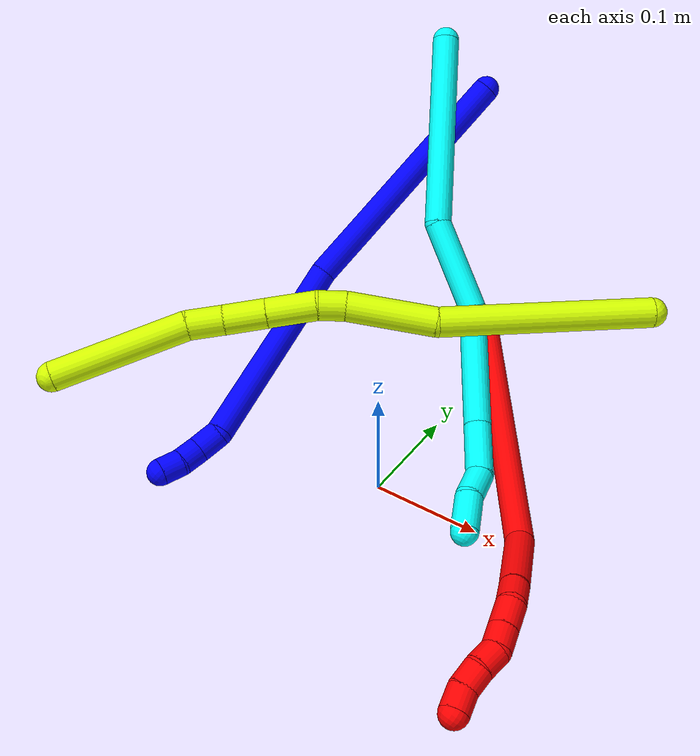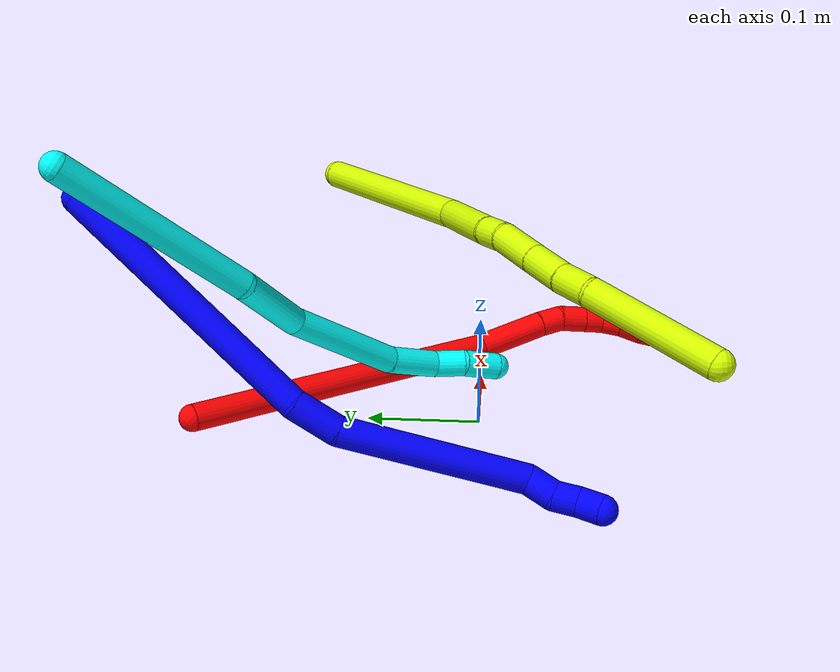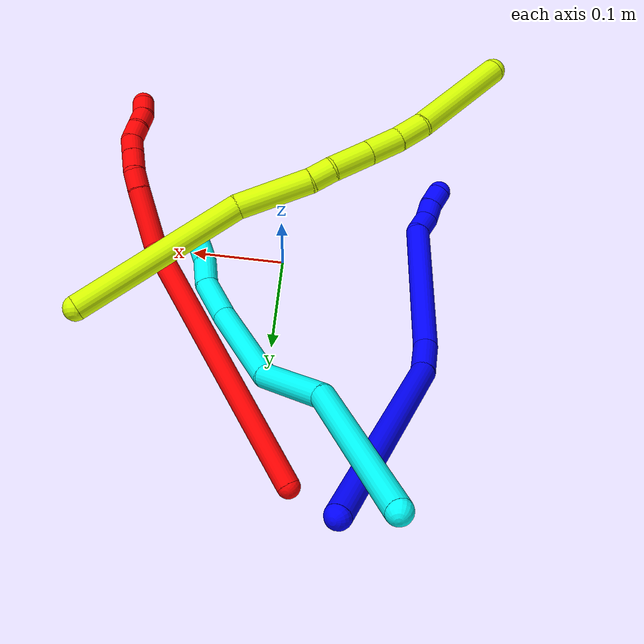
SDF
<sdf version="1.7">
 <world name="default">
  <model name="1">
   <static>0</static>
   <link name="1">
    <collision name="collision-cylinder-e_1_1_4">
     <pose>-0.005596 -0.027599 -0.115909 2.90784 -0.046932 -0.394594</pose>
     <geometry><cylinder><radius>0.0125</radius><length>0.238562</length></cylinder></geometry>
     <surface>
      <friction><ode><mu>1.16</mu><mu2>1.16</mu2><slip1>0</slip1><slip2>0</slip2></ode></friction>
      <contact><ode><kp>1e+06</kp><kd>1</kd><max_vel>0</max_vel><min_depth>0.001</min_depth></ode></contact>
     </surface>
    </collision>
    <visual name="visual-cylinder-e_1_1_4">
     <pose>-0.005596 -0.027599 -0.115909 2.90784 -0.046932 -0.394594</pose>
     <geometry><cylinder><radius>0.0125</radius><length>0.238562</length></cylinder></geometry>
     <material><ambient>0 0 1 1</ambient></material>
    </visual>
    <collision name="collision-cylinder-e_2_4_5">
     <pose>-0.009926 -0.064398 -0.249499 2.66175 0.063418 0.257884</pose>
     <geometry><cylinder><radius>0.0125</radius><length>0.039944</length></cylinder></geometry>
     <surface>
      <friction><ode><mu>1.16</mu><mu2>1.16</mu2><slip1>0</slip1><slip2>0</slip2></ode></friction>
      <contact><ode><kp>1e+06</kp><kd>1</kd><max_vel>0</max_vel><min_depth>0.001</min_depth></ode></contact>
     </surface>
    </collision>
    <visual name="visual-cylinder-e_2_4_5">
     <pose>-0.009926 -0.064398 -0.249499 2.66175 0.063418 0.257884</pose>
     <geometry><cylinder><radius>0.0125</radius><length>0.039944</length></cylinder></geometry>
     <material><ambient>0 0 1 1</ambient></material>
    </visual>
    <collision name="collision-cylinder-e_3_5_6">
     <pose>-0.009202 -0.128324 -0.323468 2.37028 -0.006903 -0.017002</pose>
     <geometry><cylinder><radius>0.0125</radius><length>0.157015</length></cylinder></geometry>
     <surface>
      <friction><ode><mu>1.16</mu><mu2>1.16</mu2><slip1>0</slip1><slip2>0</slip2></ode></friction>
      <contact><ode><kp>1e+06</kp><kd>1</kd><max_vel>0</max_vel><min_depth>0.001</min_depth></ode></contact>
     </surface>
    </collision>
    <visual name="visual-cylinder-e_3_5_6">
     <pose>-0.009202 -0.128324 -0.323468 2.37028 -0.006903 -0.017002</pose>
     <geometry><cylinder><radius>0.0125</radius><length>0.157015</length></cylinder></geometry>
     <material><ambient>0 0 1 1</ambient></material>
    </visual>
    <collision name="collision-cylinder-e_4_6_7">
     <pose>-0.012711 -0.187087 -0.390715 2.78848 -0.248746 -1.22241</pose>
     <geometry><cylinder><radius>0.0125</radius><length>0.024099</length></cylinder></geometry>
     <surface>
      <friction><ode><mu>1.16</mu><mu2>1.16</mu2><slip1>0</slip1><slip2>0</slip2></ode></friction>
      <contact><ode><kp>1e+06</kp><kd>1</kd><max_vel>0</max_vel><min_depth>0.001</min_depth></ode></contact>
     </surface>
    </collision>
    <visual name="visual-cylinder-e_4_6_7">
     <pose>-0.012711 -0.187087 -0.390715 2.78848 -0.248746 -1.22241</pose>
     <geometry><cylinder><radius>0.0125</radius><length>0.024099</length></cylinder></geometry>
     <material><ambient>0 0 1 1</ambient></material>
    </visual>
    <collision name="collision-cylinder-e_5_7_8">
     <pose>-0.019027 -0.197235 -0.409031 2.44873 -0.336929 -0.880586</pose>
     <geometry><cylinder><radius>0.0125</radius><length>0.020268</length></cylinder></geometry>
     <surface>
      <friction><ode><mu>1.16</mu><mu2>1.16</mu2><slip1>0</slip1><slip2>0</slip2></ode></friction>
      <contact><ode><kp>1e+06</kp><kd>1</kd><max_vel>0</max_vel><min_depth>0.001</min_depth></ode></contact>
     </surface>
    </collision>
    <visual name="visual-cylinder-e_5_7_8">
     <pose>-0.019027 -0.197235 -0.409031 2.44873 -0.336929 -0.880586</pose>
     <geometry><cylinder><radius>0.0125</radius><length>0.020268</length></cylinder></geometry>
     <material><ambient>0 0 1 1</ambient></material>
    </visual>
    <collision name="collision-cylinder-e_6_8_2">
     <pose>-0.02729 -0.207819 -0.423939 2.60648 -0.510324 -1.52115</pose>
     <geometry><cylinder><radius>0.0125</radius><length>0.020113</length></cylinder></geometry>
     <surface>
      <friction><ode><mu>1.16</mu><mu2>1.16</mu2><slip1>0</slip1><slip2>0</slip2></ode></friction>
      <contact><ode><kp>1e+06</kp><kd>1</kd><max_vel>0</max_vel><min_depth>0.001</min_depth></ode></contact>
     </surface>
    </collision>
    <visual name="visual-cylinder-e_6_8_2">
     <pose>-0.02729 -0.207819 -0.423939 2.60648 -0.510324 -1.52115</pose>
     <geometry><cylinder><radius>0.0125</radius><length>0.020113</length></cylinder></geometry>
     <material><ambient>0 0 1 1</ambient></material>
    </visual>
    <collision name="collision-sphere-2">
     <pose>-0.032202 -0.212293 -0.431487 0 -0 0</pose>
     <geometry><sphere><radius>0.0125</radius></sphere></geometry>
     <surface>
      <friction><ode><mu>1.16</mu><mu2>1.16</mu2><slip1>0</slip1><slip2>0</slip2></ode></friction>
      <contact><ode><kp>1e+06</kp><kd>1</kd><max_vel>0</max_vel><min_depth>0.001</min_depth></ode></contact>
     </surface>
    </collision>
    <visual name="visual-sphere-2">
     <pose>-0.032202 -0.212293 -0.431487 0 -0 0</pose>
     <geometry><sphere><radius>0.0125</radius></sphere></geometry>
     <material><ambient>0 0 1 1</ambient></material>
    </visual>
    <collision name="collision-sphere-4">
     <pose>-0.011192 -0.055197 -0.231819 0 -0 0</pose>
     <geometry><sphere><radius>0.0125</radius></sphere></geometry>
     <surface>
      <friction><ode><mu>1.16</mu><mu2>1.16</mu2><slip1>0</slip1><slip2>0</slip2></ode></friction>
      <contact><ode><kp>1e+06</kp><kd>1</kd><max_vel>0</max_vel><min_depth>0.001</min_depth></ode></contact>
     </surface>
    </collision>
    <visual name="visual-sphere-4">
     <pose>-0.011192 -0.055197 -0.231819 0 -0 0</pose>
     <geometry><sphere><radius>0.0125</radius></sphere></geometry>
     <material><ambient>0 0 1 1</ambient></material>
    </visual>
    <collision name="collision-sphere-1">
     <geometry><sphere><radius>0.0125</radius></sphere></geometry>
     <surface>
      <friction><ode><mu>1.16</mu><mu2>1.16</mu2><slip1>0</slip1><slip2>0</slip2></ode></friction>
      <contact><ode><kp>1e+06</kp><kd>1</kd><max_vel>0</max_vel><min_depth>0.001</min_depth></ode></contact>
     </surface>
    </collision>
    <visual name="visual-sphere-1">
     <geometry><sphere><radius>0.0125</radius></sphere></geometry>
     <material><ambient>0 0 1 1</ambient></material>
    </visual>
    <collision name="collision-sphere-8">
     <pose>-0.022378 -0.203344 -0.41639 0 -0 0</pose>
     <geometry><sphere><radius>0.0125</radius></sphere></geometry>
     <surface>
      <friction><ode><mu>1.16</mu><mu2>1.16</mu2><slip1>0</slip1><slip2>0</slip2></ode></friction>
      <contact><ode><kp>1e+06</kp><kd>1</kd><max_vel>0</max_vel><min_depth>0.001</min_depth></ode></contact>
     </surface>
    </collision>
    <visual name="visual-sphere-8">
     <pose>-0.022378 -0.203344 -0.41639 0 -0 0</pose>
     <geometry><sphere><radius>0.0125</radius></sphere></geometry>
     <material><ambient>0 0 1 1</ambient></material>
    </visual>
    <collision name="collision-sphere-5">
     <pose>-0.008661 -0.0736 -0.26718 0 -0 0</pose>
     <geometry><sphere><radius>0.0125</radius></sphere></geometry>
     <surface>
      <friction><ode><mu>1.16</mu><mu2>1.16</mu2><slip1>0</slip1><slip2>0</slip2></ode></friction>
      <contact><ode><kp>1e+06</kp><kd>1</kd><max_vel>0</max_vel><min_depth>0.001</min_depth></ode></contact>
     </surface>
    </collision>
    <visual name="visual-sphere-5">
     <pose>-0.008661 -0.0736 -0.26718 0 -0 0</pose>
     <geometry><sphere><radius>0.0125</radius></sphere></geometry>
     <material><ambient>0 0 1 1</ambient></material>
    </visual>
    <collision name="collision-sphere-6">
     <pose>-0.009744 -0.183048 -0.379757 0 -0 0</pose>
     <geometry><sphere><radius>0.0125</radius></sphere></geometry>
     <surface>
      <friction><ode><mu>1.16</mu><mu2>1.16</mu2><slip1>0</slip1><slip2>0</slip2></ode></friction>
      <contact><ode><kp>1e+06</kp><kd>1</kd><max_vel>0</max_vel><min_depth>0.001</min_depth></ode></contact>
     </surface>
    </collision>
    <visual name="visual-sphere-6">
     <pose>-0.009744 -0.183048 -0.379757 0 -0 0</pose>
     <geometry><sphere><radius>0.0125</radius></sphere></geometry>
     <material><ambient>0 0 1 1</ambient></material>
    </visual>
    <collision name="collision-sphere-7">
     <pose>-0.015677 -0.191126 -0.401672 0 -0 0</pose>
     <geometry><sphere><radius>0.0125</radius></sphere></geometry>
     <surface>
      <friction><ode><mu>1.16</mu><mu2>1.16</mu2><slip1>0</slip1><slip2>0</slip2></ode></friction>
      <contact><ode><kp>1e+06</kp><kd>1</kd><max_vel>0</max_vel><min_depth>0.001</min_depth></ode></contact>
     </surface>
    </collision>
    <visual name="visual-sphere-7">
     <pose>-0.015677 -0.191126 -0.401672 0 -0 0</pose>
     <geometry><sphere><radius>0.0125</radius></sphere></geometry>
     <material><ambient>0 0 1 1</ambient></material>
    </visual>
    <inertial>
     <pose>-0.008834 -0.083982 -0.229279 0 -0 0</pose>
     <mass>0.5</mass>
     <inertia>
      <ixx>0.00094</ixx>
      <ixy>0</ixy>
      <ixz>0</ixz>
      <iyy>-0.001725</iyy>
      <iyz>0</iyz>
      <izz>0.000522</izz>
     </inertia>
    </inertial>
   </link>
   <pose>-0.086959 0.32077 0.230772 -0.417349 0.681276 0.352336</pose>
  </model>
  <model name="2">
   <static>0</static>
   <link name="2">
    <collision name="collision-cylinder-e_1_1_4">
     <pose>0.049771 -0.120198 -0.082406 2.17178 0.329097 0.610627</pose>
     <geometry><cylinder><radius>0.0125</radius><length>0.307997</length></cylinder></geometry>
     <surface>
      <friction><ode><mu>1.16</mu><mu2>1.16</mu2><slip1>0</slip1><slip2>0</slip2></ode></friction>
      <contact><ode><kp>1e+06</kp><kd>1</kd><max_vel>0</max_vel><min_depth>0.001</min_depth></ode></contact>
     </surface>
    </collision>
    <visual name="visual-cylinder-e_1_1_4">
     <pose>0.049771 -0.120198 -0.082406 2.17178 0.329097 0.610627</pose>
     <geometry><cylinder><radius>0.0125</radius><length>0.307997</length></cylinder></geometry>
     <material><ambient>1 0 0 1</ambient></material>
    </visual>
    <collision name="collision-cylinder-e_2_4_5">
     <pose>0.100787 -0.269382 -0.180263 2.06053 0.03791 0.063153</pose>
     <geometry><cylinder><radius>0.0125</radius><length>0.065739</length></cylinder></geometry>
     <surface>
      <friction><ode><mu>1.16</mu><mu2>1.16</mu2><slip1>0</slip1><slip2>0</slip2></ode></friction>
      <contact><ode><kp>1e+06</kp><kd>1</kd><max_vel>0</max_vel><min_depth>0.001</min_depth></ode></contact>
     </surface>
    </collision>
    <visual name="visual-cylinder-e_2_4_5">
     <pose>0.100787 -0.269382 -0.180263 2.06053 0.03791 0.063153</pose>
     <geometry><cylinder><radius>0.0125</radius><length>0.065739</length></cylinder></geometry>
     <material><ambient>1 0 0 1</ambient></material>
    </visual>
    <collision name="collision-cylinder-e_3_5_6">
     <pose>0.10247 -0.307739 -0.201701 2.13935 0.039279 0.071686</pose>
     <geometry><cylinder><radius>0.0125</radius><length>0.02226</length></cylinder></geometry>
     <surface>
      <friction><ode><mu>1.16</mu><mu2>1.16</mu2><slip1>0</slip1><slip2>0</slip2></ode></friction>
      <contact><ode><kp>1e+06</kp><kd>1</kd><max_vel>0</max_vel><min_depth>0.001</min_depth></ode></contact>
     </surface>
    </collision>
    <visual name="visual-cylinder-e_3_5_6">
     <pose>0.10247 -0.307739 -0.201701 2.13935 0.039279 0.071686</pose>
     <geometry><cylinder><radius>0.0125</radius><length>0.02226</length></cylinder></geometry>
     <material><ambient>1 0 0 1</ambient></material>
    </visual>
    <collision name="collision-cylinder-e_4_6_7">
     <pose>0.103639 -0.324666 -0.216952 2.45736 0.061177 0.171421</pose>
     <geometry><cylinder><radius>0.0125</radius><length>0.023952</length></cylinder></geometry>
     <surface>
      <friction><ode><mu>1.16</mu><mu2>1.16</mu2><slip1>0</slip1><slip2>0</slip2></ode></friction>
      <contact><ode><kp>1e+06</kp><kd>1</kd><max_vel>0</max_vel><min_depth>0.001</min_depth></ode></contact>
     </surface>
    </collision>
    <visual name="visual-cylinder-e_4_6_7">
     <pose>0.103639 -0.324666 -0.216952 2.45736 0.061177 0.171421</pose>
     <geometry><cylinder><radius>0.0125</radius><length>0.023952</length></cylinder></geometry>
     <material><ambient>1 0 0 1</ambient></material>
    </visual>
    <collision name="collision-cylinder-e_5_7_8">
     <pose>0.105009 -0.338509 -0.233966 2.46016 0.063813 0.179564</pose>
     <geometry><cylinder><radius>0.0125</radius><length>0.020001</length></cylinder></geometry>
     <surface>
      <friction><ode><mu>1.16</mu><mu2>1.16</mu2><slip1>0</slip1><slip2>0</slip2></ode></friction>
      <contact><ode><kp>1e+06</kp><kd>1</kd><max_vel>0</max_vel><min_depth>0.001</min_depth></ode></contact>
     </surface>
    </collision>
    <visual name="visual-cylinder-e_5_7_8">
     <pose>0.105009 -0.338509 -0.233966 2.46016 0.063813 0.179564</pose>
     <geometry><cylinder><radius>0.0125</radius><length>0.020001</length></cylinder></geometry>
     <material><ambient>1 0 0 1</ambient></material>
    </visual>
    <collision name="collision-cylinder-e_6_8_9">
     <pose>0.102604 -0.349234 -0.250149 2.65698 -0.309044 -1.12468</pose>
     <geometry><cylinder><radius>0.0125</radius><length>0.020004</length></cylinder></geometry>
     <surface>
      <friction><ode><mu>1.16</mu><mu2>1.16</mu2><slip1>0</slip1><slip2>0</slip2></ode></friction>
      <contact><ode><kp>1e+06</kp><kd>1</kd><max_vel>0</max_vel><min_depth>0.001</min_depth></ode></contact>
     </surface>
    </collision>
    <visual name="visual-cylinder-e_6_8_9">
     <pose>0.102604 -0.349234 -0.250149 2.65698 -0.309044 -1.12468</pose>
     <geometry><cylinder><radius>0.0125</radius><length>0.020004</length></cylinder></geometry>
     <material><ambient>1 0 0 1</ambient></material>
    </visual>
    <collision name="collision-cylinder-e_7_9_10">
     <pose>0.097997 -0.357035 -0.26789 2.79504 -0.156853 -0.844038</pose>
     <geometry><cylinder><radius>0.0125</radius><length>0.020042</length></cylinder></geometry>
     <surface>
      <friction><ode><mu>1.16</mu><mu2>1.16</mu2><slip1>0</slip1><slip2>0</slip2></ode></friction>
      <contact><ode><kp>1e+06</kp><kd>1</kd><max_vel>0</max_vel><min_depth>0.001</min_depth></ode></contact>
     </surface>
    </collision>
    <visual name="visual-cylinder-e_7_9_10">
     <pose>0.097997 -0.357035 -0.26789 2.79504 -0.156853 -0.844038</pose>
     <geometry><cylinder><radius>0.0125</radius><length>0.020042</length></cylinder></geometry>
     <material><ambient>1 0 0 1</ambient></material>
    </visual>
    <collision name="collision-cylinder-e_8_10_2">
     <pose>0.097232 -0.365342 -0.285856 2.62257 0.08009 0.299561</pose>
     <geometry><cylinder><radius>0.0125</radius><length>0.020004</length></cylinder></geometry>
     <surface>
      <friction><ode><mu>1.16</mu><mu2>1.16</mu2><slip1>0</slip1><slip2>0</slip2></ode></friction>
      <contact><ode><kp>1e+06</kp><kd>1</kd><max_vel>0</max_vel><min_depth>0.001</min_depth></ode></contact>
     </surface>
    </collision>
    <visual name="visual-cylinder-e_8_10_2">
     <pose>0.097232 -0.365342 -0.285856 2.62257 0.08009 0.299561</pose>
     <geometry><cylinder><radius>0.0125</radius><length>0.020004</length></cylinder></geometry>
     <material><ambient>1 0 0 1</ambient></material>
    </visual>
    <collision name="collision-sphere-2">
     <pose>0.098032 -0.370288 -0.294513 0 -0 0</pose>
     <geometry><sphere><radius>0.0125</radius></sphere></geometry>
     <surface>
      <friction><ode><mu>1.16</mu><mu2>1.16</mu2><slip1>0</slip1><slip2>0</slip2></ode></friction>
      <contact><ode><kp>1e+06</kp><kd>1</kd><max_vel>0</max_vel><min_depth>0.001</min_depth></ode></contact>
     </surface>
    </collision>
    <visual name="visual-sphere-2">
     <pose>0.098032 -0.370288 -0.294513 0 -0 0</pose>
     <geometry><sphere><radius>0.0125</radius></sphere></geometry>
     <material><ambient>1 0 0 1</ambient></material>
    </visual>
    <collision name="collision-sphere-10">
     <pose>0.096431 -0.360397 -0.2772 0 -0 0</pose>
     <geometry><sphere><radius>0.0125</radius></sphere></geometry>
     <surface>
      <friction><ode><mu>1.16</mu><mu2>1.16</mu2><slip1>0</slip1><slip2>0</slip2></ode></friction>
      <contact><ode><kp>1e+06</kp><kd>1</kd><max_vel>0</max_vel><min_depth>0.001</min_depth></ode></contact>
     </surface>
    </collision>
    <visual name="visual-sphere-10">
     <pose>0.096431 -0.360397 -0.2772 0 -0 0</pose>
     <geometry><sphere><radius>0.0125</radius></sphere></geometry>
     <material><ambient>1 0 0 1</ambient></material>
    </visual>
    <collision name="collision-sphere-9">
     <pose>0.099562 -0.353673 -0.25858 0 -0 0</pose>
     <geometry><sphere><radius>0.0125</radius></sphere></geometry>
     <surface>
      <friction><ode><mu>1.16</mu><mu2>1.16</mu2><slip1>0</slip1><slip2>0</slip2></ode></friction>
      <contact><ode><kp>1e+06</kp><kd>1</kd><max_vel>0</max_vel><min_depth>0.001</min_depth></ode></contact>
     </surface>
    </collision>
    <visual name="visual-sphere-9">
     <pose>0.099562 -0.353673 -0.25858 0 -0 0</pose>
     <geometry><sphere><radius>0.0125</radius></sphere></geometry>
     <material><ambient>1 0 0 1</ambient></material>
    </visual>
    <collision name="collision-sphere-4">
     <pose>0.099541 -0.240397 -0.164812 0 -0 0</pose>
     <geometry><sphere><radius>0.0125</radius></sphere></geometry>
     <surface>
      <friction><ode><mu>1.16</mu><mu2>1.16</mu2><slip1>0</slip1><slip2>0</slip2></ode></friction>
      <contact><ode><kp>1e+06</kp><kd>1</kd><max_vel>0</max_vel><min_depth>0.001</min_depth></ode></contact>
     </surface>
    </collision>
    <visual name="visual-sphere-4">
     <pose>0.099541 -0.240397 -0.164812 0 -0 0</pose>
     <geometry><sphere><radius>0.0125</radius></sphere></geometry>
     <material><ambient>1 0 0 1</ambient></material>
    </visual>
    <collision name="collision-sphere-1">
     <geometry><sphere><radius>0.0125</radius></sphere></geometry>
     <surface>
      <friction><ode><mu>1.16</mu><mu2>1.16</mu2><slip1>0</slip1><slip2>0</slip2></ode></friction>
      <contact><ode><kp>1e+06</kp><kd>1</kd><max_vel>0</max_vel><min_depth>0.001</min_depth></ode></contact>
     </surface>
    </collision>
    <visual name="visual-sphere-1">
     <geometry><sphere><radius>0.0125</radius></sphere></geometry>
     <material><ambient>1 0 0 1</ambient></material>
    </visual>
    <collision name="collision-sphere-8">
     <pose>0.105647 -0.344795 -0.241718 0 -0 0</pose>
     <geometry><sphere><radius>0.0125</radius></sphere></geometry>
     <surface>
      <friction><ode><mu>1.16</mu><mu2>1.16</mu2><slip1>0</slip1><slip2>0</slip2></ode></friction>
      <contact><ode><kp>1e+06</kp><kd>1</kd><max_vel>0</max_vel><min_depth>0.001</min_depth></ode></contact>
     </surface>
    </collision>
    <visual name="visual-sphere-8">
     <pose>0.105647 -0.344795 -0.241718 0 -0 0</pose>
     <geometry><sphere><radius>0.0125</radius></sphere></geometry>
     <material><ambient>1 0 0 1</ambient></material>
    </visual>
    <collision name="collision-sphere-5">
     <pose>0.102033 -0.298367 -0.195713 0 -0 0</pose>
     <geometry><sphere><radius>0.0125</radius></sphere></geometry>
     <surface>
      <friction><ode><mu>1.16</mu><mu2>1.16</mu2><slip1>0</slip1><slip2>0</slip2></ode></friction>
      <contact><ode><kp>1e+06</kp><kd>1</kd><max_vel>0</max_vel><min_depth>0.001</min_depth></ode></contact>
     </surface>
    </collision>
    <visual name="visual-sphere-5">
     <pose>0.102033 -0.298367 -0.195713 0 -0 0</pose>
     <geometry><sphere><radius>0.0125</radius></sphere></geometry>
     <material><ambient>1 0 0 1</ambient></material>
    </visual>
    <collision name="collision-sphere-6">
     <pose>0.102907 -0.317111 -0.207689 0 -0 0</pose>
     <geometry><sphere><radius>0.0125</radius></sphere></geometry>
     <surface>
      <friction><ode><mu>1.16</mu><mu2>1.16</mu2><slip1>0</slip1><slip2>0</slip2></ode></friction>
      <contact><ode><kp>1e+06</kp><kd>1</kd><max_vel>0</max_vel><min_depth>0.001</min_depth></ode></contact>
     </surface>
    </collision>
    <visual name="visual-sphere-6">
     <pose>0.102907 -0.317111 -0.207689 0 -0 0</pose>
     <geometry><sphere><radius>0.0125</radius></sphere></geometry>
     <material><ambient>1 0 0 1</ambient></material>
    </visual>
    <collision name="collision-sphere-7">
     <pose>0.104371 -0.332222 -0.226215 0 -0 0</pose>
     <geometry><sphere><radius>0.0125</radius></sphere></geometry>
     <surface>
      <friction><ode><mu>1.16</mu><mu2>1.16</mu2><slip1>0</slip1><slip2>0</slip2></ode></friction>
      <contact><ode><kp>1e+06</kp><kd>1</kd><max_vel>0</max_vel><min_depth>0.001</min_depth></ode></contact>
     </surface>
    </collision>
    <visual name="visual-sphere-7">
     <pose>0.104371 -0.332222 -0.226215 0 -0 0</pose>
     <geometry><sphere><radius>0.0125</radius></sphere></geometry>
     <material><ambient>1 0 0 1</ambient></material>
    </visual>
    <inertial>
     <pose>0.06956 -0.195154 -0.135377 0 -0 0</pose>
     <mass>0.5</mass>
     <inertia>
      <ixx>0.003267</ixx>
      <ixy>0</ixy>
      <ixz>0</ixz>
      <iyy>0.000521</iyy>
      <iyz>0</iyz>
      <izz>0.001124</izz>
     </inertia>
    </inertial>
   </link>
   <pose>-0.036448 0.25226 0.013014 -0.780236 0.49466 0.244346</pose>
  </model>
  <model name="3">
   <static>0</static>
   <link name="3">
    <collision name="collision-cylinder-e_1_1_4">
     <pose>0.033941 -0.014342 -0.085465 2.97533 0.373292 2.31055</pose>
     <geometry><cylinder><radius>0.0125</radius><length>0.18614</length></cylinder></geometry>
     <surface>
      <friction><ode><mu>1.16</mu><mu2>1.16</mu2><slip1>0</slip1><slip2>0</slip2></ode></friction>
      <contact><ode><kp>1e+06</kp><kd>1</kd><max_vel>0</max_vel><min_depth>0.001</min_depth></ode></contact>
     </surface>
    </collision>
    <visual name="visual-cylinder-e_1_1_4">
     <pose>0.033941 -0.014342 -0.085465 2.97533 0.373292 2.31055</pose>
     <geometry><cylinder><radius>0.0125</radius><length>0.18614</length></cylinder></geometry>
     <material><ambient>0.003922 1 0.996078 1</ambient></material>
    </visual>
    <collision name="collision-cylinder-e_2_4_5">
     <pose>0.097947 -0.040353 -0.200239 2.76267 0.761369 2.24792</pose>
     <geometry><cylinder><radius>0.0125</radius><length>0.087157</length></cylinder></geometry>
     <surface>
      <friction><ode><mu>1.16</mu><mu2>1.16</mu2><slip1>0</slip1><slip2>0</slip2></ode></friction>
      <contact><ode><kp>1e+06</kp><kd>1</kd><max_vel>0</max_vel><min_depth>0.001</min_depth></ode></contact>
     </surface>
    </collision>
    <visual name="visual-cylinder-e_2_4_5">
     <pose>0.097947 -0.040353 -0.200239 2.76267 0.761369 2.24792</pose>
     <geometry><cylinder><radius>0.0125</radius><length>0.087157</length></cylinder></geometry>
     <material><ambient>0.003922 1 0.996078 1</ambient></material>
    </visual>
    <collision name="collision-cylinder-e_3_5_6">
     <pose>0.147623 -0.069289 -0.279862 2.81101 0.353191 1.63821</pose>
     <geometry><cylinder><radius>0.0125</radius><length>0.113388</length></cylinder></geometry>
     <surface>
      <friction><ode><mu>1.16</mu><mu2>1.16</mu2><slip1>0</slip1><slip2>0</slip2></ode></friction>
      <contact><ode><kp>1e+06</kp><kd>1</kd><max_vel>0</max_vel><min_depth>0.001</min_depth></ode></contact>
     </surface>
    </collision>
    <visual name="visual-cylinder-e_3_5_6">
     <pose>0.147623 -0.069289 -0.279862 2.81101 0.353191 1.63821</pose>
     <geometry><cylinder><radius>0.0125</radius><length>0.113388</length></cylinder></geometry>
     <material><ambient>0.003922 1 0.996078 1</ambient></material>
    </visual>
    <collision name="collision-cylinder-e_4_6_7">
     <pose>0.17195 -0.099192 -0.351433 2.60526 0.188507 0.662686</pose>
     <geometry><cylinder><radius>0.0125</radius><length>0.050349</length></cylinder></geometry>
     <surface>
      <friction><ode><mu>1.16</mu><mu2>1.16</mu2><slip1>0</slip1><slip2>0</slip2></ode></friction>
      <contact><ode><kp>1e+06</kp><kd>1</kd><max_vel>0</max_vel><min_depth>0.001</min_depth></ode></contact>
     </surface>
    </collision>
    <visual name="visual-cylinder-e_4_6_7">
     <pose>0.17195 -0.099192 -0.351433 2.60526 0.188507 0.662686</pose>
     <geometry><cylinder><radius>0.0125</radius><length>0.050349</length></cylinder></geometry>
     <material><ambient>0.003922 1 0.996078 1</ambient></material>
    </visual>
    <collision name="collision-cylinder-e_5_7_8">
     <pose>0.172896 -0.118671 -0.384638 2.62149 -0.267366 -0.935974</pose>
     <geometry><cylinder><radius>0.0125</radius><length>0.028554</length></cylinder></geometry>
     <surface>
      <friction><ode><mu>1.16</mu><mu2>1.16</mu2><slip1>0</slip1><slip2>0</slip2></ode></friction>
      <contact><ode><kp>1e+06</kp><kd>1</kd><max_vel>0</max_vel><min_depth>0.001</min_depth></ode></contact>
     </surface>
    </collision>
    <visual name="visual-cylinder-e_5_7_8">
     <pose>0.172896 -0.118671 -0.384638 2.62149 -0.267366 -0.935974</pose>
     <geometry><cylinder><radius>0.0125</radius><length>0.028554</length></cylinder></geometry>
     <material><ambient>0.003922 1 0.996078 1</ambient></material>
    </visual>
    <collision name="collision-cylinder-e_6_8_2">
     <pose>0.16994 -0.133498 -0.411806 2.65847 0.047406 0.191862</pose>
     <geometry><cylinder><radius>0.0125</radius><length>0.034412</length></cylinder></geometry>
     <surface>
      <friction><ode><mu>1.16</mu><mu2>1.16</mu2><slip1>0</slip1><slip2>0</slip2></ode></friction>
      <contact><ode><kp>1e+06</kp><kd>1</kd><max_vel>0</max_vel><min_depth>0.001</min_depth></ode></contact>
     </surface>
    </collision>
    <visual name="visual-cylinder-e_6_8_2">
     <pose>0.16994 -0.133498 -0.411806 2.65847 0.047406 0.191862</pose>
     <geometry><cylinder><radius>0.0125</radius><length>0.034412</length></cylinder></geometry>
     <material><ambient>0.003922 1 0.996078 1</ambient></material>
    </visual>
    <collision name="collision-sphere-2">
     <pose>0.170755 -0.141482 -0.427026 0 -0 0</pose>
     <geometry><sphere><radius>0.0125</radius></sphere></geometry>
     <surface>
      <friction><ode><mu>1.16</mu><mu2>1.16</mu2><slip1>0</slip1><slip2>0</slip2></ode></friction>
      <contact><ode><kp>1e+06</kp><kd>1</kd><max_vel>0</max_vel><min_depth>0.001</min_depth></ode></contact>
     </surface>
    </collision>
    <visual name="visual-sphere-2">
     <pose>0.170755 -0.141482 -0.427026 0 -0 0</pose>
     <geometry><sphere><radius>0.0125</radius></sphere></geometry>
     <material><ambient>0.003922 1 0.996078 1</ambient></material>
    </visual>
    <collision name="collision-sphere-4">
     <pose>0.067882 -0.028683 -0.170931 0 -0 0</pose>
     <geometry><sphere><radius>0.0125</radius></sphere></geometry>
     <surface>
      <friction><ode><mu>1.16</mu><mu2>1.16</mu2><slip1>0</slip1><slip2>0</slip2></ode></friction>
      <contact><ode><kp>1e+06</kp><kd>1</kd><max_vel>0</max_vel><min_depth>0.001</min_depth></ode></contact>
     </surface>
    </collision>
    <visual name="visual-sphere-4">
     <pose>0.067882 -0.028683 -0.170931 0 -0 0</pose>
     <geometry><sphere><radius>0.0125</radius></sphere></geometry>
     <material><ambient>0.003922 1 0.996078 1</ambient></material>
    </visual>
    <collision name="collision-sphere-1">
     <geometry><sphere><radius>0.0125</radius></sphere></geometry>
     <surface>
      <friction><ode><mu>1.16</mu><mu2>1.16</mu2><slip1>0</slip1><slip2>0</slip2></ode></friction>
      <contact><ode><kp>1e+06</kp><kd>1</kd><max_vel>0</max_vel><min_depth>0.001</min_depth></ode></contact>
     </surface>
    </collision>
    <visual name="visual-sphere-1">
     <geometry><sphere><radius>0.0125</radius></sphere></geometry>
     <material><ambient>0.003922 1 0.996078 1</ambient></material>
    </visual>
    <collision name="collision-sphere-8">
     <pose>0.169124 -0.125514 -0.396587 0 -0 0</pose>
     <geometry><sphere><radius>0.0125</radius></sphere></geometry>
     <surface>
      <friction><ode><mu>1.16</mu><mu2>1.16</mu2><slip1>0</slip1><slip2>0</slip2></ode></friction>
      <contact><ode><kp>1e+06</kp><kd>1</kd><max_vel>0</max_vel><min_depth>0.001</min_depth></ode></contact>
     </surface>
    </collision>
    <visual name="visual-sphere-8">
     <pose>0.169124 -0.125514 -0.396587 0 -0 0</pose>
     <geometry><sphere><radius>0.0125</radius></sphere></geometry>
     <material><ambient>0.003922 1 0.996078 1</ambient></material>
    </visual>
    <collision name="collision-sphere-5">
     <pose>0.128012 -0.052022 -0.229547 0 -0 0</pose>
     <geometry><sphere><radius>0.0125</radius></sphere></geometry>
     <surface>
      <friction><ode><mu>1.16</mu><mu2>1.16</mu2><slip1>0</slip1><slip2>0</slip2></ode></friction>
      <contact><ode><kp>1e+06</kp><kd>1</kd><max_vel>0</max_vel><min_depth>0.001</min_depth></ode></contact>
     </surface>
    </collision>
    <visual name="visual-sphere-5">
     <pose>0.128012 -0.052022 -0.229547 0 -0 0</pose>
     <geometry><sphere><radius>0.0125</radius></sphere></geometry>
     <material><ambient>0.003922 1 0.996078 1</ambient></material>
    </visual>
    <collision name="collision-sphere-6">
     <pose>0.167233 -0.086556 -0.330176 0 -0 0</pose>
     <geometry><sphere><radius>0.0125</radius></sphere></geometry>
     <surface>
      <friction><ode><mu>1.16</mu><mu2>1.16</mu2><slip1>0</slip1><slip2>0</slip2></ode></friction>
      <contact><ode><kp>1e+06</kp><kd>1</kd><max_vel>0</max_vel><min_depth>0.001</min_depth></ode></contact>
     </surface>
    </collision>
    <visual name="visual-sphere-6">
     <pose>0.167233 -0.086556 -0.330176 0 -0 0</pose>
     <geometry><sphere><radius>0.0125</radius></sphere></geometry>
     <material><ambient>0.003922 1 0.996078 1</ambient></material>
    </visual>
    <collision name="collision-sphere-7">
     <pose>0.176668 -0.111828 -0.372689 0 -0 0</pose>
     <geometry><sphere><radius>0.0125</radius></sphere></geometry>
     <surface>
      <friction><ode><mu>1.16</mu><mu2>1.16</mu2><slip1>0</slip1><slip2>0</slip2></ode></friction>
      <contact><ode><kp>1e+06</kp><kd>1</kd><max_vel>0</max_vel><min_depth>0.001</min_depth></ode></contact>
     </surface>
    </collision>
    <visual name="visual-sphere-7">
     <pose>0.176668 -0.111828 -0.372689 0 -0 0</pose>
     <geometry><sphere><radius>0.0125</radius></sphere></geometry>
     <material><ambient>0.003922 1 0.996078 1</ambient></material>
    </visual>
    <inertial>
     <pose>0.102071 -0.05404 -0.215884 0 -0 0</pose>
     <mass>0.5</mass>
     <inertia>
      <ixx>0.000185</ixx>
      <ixy>0</ixy>
      <ixz>0</ixz>
      <iyy>0.000962</iyy>
      <iyz>0</iyz>
      <izz>-0.00017</izz>
     </inertia>
    </inertial>
   </link>
   <pose>-0.133542 0.31966 0.270418 -0.80203 0.66205 0.56889</pose>
  </model>
  <model name="15">
   <static>0</static>
   <link name="15">
    <collision name="collision-cylinder-e_1_1_4">
     <pose>-0.038095 -0.063485 -0.050908 2.24668 -0.437832 -0.868178</pose>
     <geometry><cylinder><radius>0.0125</radius><length>0.179702</length></cylinder></geometry>
     <surface>
      <friction><ode><mu>1.16</mu><mu2>1.16</mu2><slip1>0</slip1><slip2>0</slip2></ode></friction>
      <contact><ode><kp>1e+06</kp><kd>1</kd><max_vel>0</max_vel><min_depth>0.001</min_depth></ode></contact>
     </surface>
    </collision>
    <visual name="visual-cylinder-e_1_1_4">
     <pose>-0.038095 -0.063485 -0.050908 2.24668 -0.437832 -0.868178</pose>
     <geometry><cylinder><radius>0.0125</radius><length>0.179702</length></cylinder></geometry>
     <material><ambient>0.835294 1 0 1</ambient></material>
    </visual>
    <collision name="collision-cylinder-e_2_4_5">
     <pose>-0.091693 -0.15884 -0.114167 1.94056 -0.425838 -0.611528</pose>
     <geometry><cylinder><radius>0.0125</radius><length>0.075061</length></cylinder></geometry>
     <surface>
      <friction><ode><mu>1.16</mu><mu2>1.16</mu2><slip1>0</slip1><slip2>0</slip2></ode></friction>
      <contact><ode><kp>1e+06</kp><kd>1</kd><max_vel>0</max_vel><min_depth>0.001</min_depth></ode></contact>
     </surface>
    </collision>
    <visual name="visual-cylinder-e_2_4_5">
     <pose>-0.091693 -0.15884 -0.114167 1.94056 -0.425838 -0.611528</pose>
     <geometry><cylinder><radius>0.0125</radius><length>0.075061</length></cylinder></geometry>
     <material><ambient>0.835294 1 0 1</ambient></material>
    </visual>
    <collision name="collision-cylinder-e_3_5_6">
     <pose>-0.112135 -0.199558 -0.132294 2.14893 -0.437257 -0.778648</pose>
     <geometry><cylinder><radius>0.0125</radius><length>0.023329</length></cylinder></geometry>
     <surface>
      <friction><ode><mu>1.16</mu><mu2>1.16</mu2><slip1>0</slip1><slip2>0</slip2></ode></friction>
      <contact><ode><kp>1e+06</kp><kd>1</kd><max_vel>0</max_vel><min_depth>0.001</min_depth></ode></contact>
     </surface>
    </collision>
    <visual name="visual-cylinder-e_3_5_6">
     <pose>-0.112135 -0.199558 -0.132294 2.14893 -0.437257 -0.778648</pose>
     <geometry><cylinder><radius>0.0125</radius><length>0.023329</length></cylinder></geometry>
     <material><ambient>0.835294 1 0 1</ambient></material>
    </visual>
    <collision name="collision-cylinder-e_4_6_7">
     <pose>-0.129349 -0.221537 -0.148343 2.23482 -0.634638 -1.18617</pose>
     <geometry><cylinder><radius>0.0125</radius><length>0.041406</length></cylinder></geometry>
     <surface>
      <friction><ode><mu>1.16</mu><mu2>1.16</mu2><slip1>0</slip1><slip2>0</slip2></ode></friction>
      <contact><ode><kp>1e+06</kp><kd>1</kd><max_vel>0</max_vel><min_depth>0.001</min_depth></ode></contact>
     </surface>
    </collision>
    <visual name="visual-cylinder-e_4_6_7">
     <pose>-0.129349 -0.221537 -0.148343 2.23482 -0.634638 -1.18617</pose>
     <geometry><cylinder><radius>0.0125</radius><length>0.041406</length></cylinder></geometry>
     <material><ambient>0.835294 1 0 1</ambient></material>
    </visual>
    <collision name="collision-cylinder-e_5_7_8">
     <pose>-0.152022 -0.245863 -0.167571 2.24539 -0.627531 -1.18751</pose>
     <geometry><cylinder><radius>0.0125</radius><length>0.035421</length></cylinder></geometry>
     <surface>
      <friction><ode><mu>1.16</mu><mu2>1.16</mu2><slip1>0</slip1><slip2>0</slip2></ode></friction>
      <contact><ode><kp>1e+06</kp><kd>1</kd><max_vel>0</max_vel><min_depth>0.001</min_depth></ode></contact>
     </surface>
    </collision>
    <visual name="visual-cylinder-e_5_7_8">
     <pose>-0.152022 -0.245863 -0.167571 2.24539 -0.627531 -1.18751</pose>
     <geometry><cylinder><radius>0.0125</radius><length>0.035421</length></cylinder></geometry>
     <material><ambient>0.835294 1 0 1</ambient></material>
    </visual>
    <collision name="collision-cylinder-e_6_8_9">
     <pose>-0.170226 -0.266699 -0.185258 2.30681 -0.540416 -1.11664</pose>
     <geometry><cylinder><radius>0.0125</radius><length>0.030339</length></cylinder></geometry>
     <surface>
      <friction><ode><mu>1.16</mu><mu2>1.16</mu2><slip1>0</slip1><slip2>0</slip2></ode></friction>
      <contact><ode><kp>1e+06</kp><kd>1</kd><max_vel>0</max_vel><min_depth>0.001</min_depth></ode></contact>
     </surface>
    </collision>
    <visual name="visual-cylinder-e_6_8_9">
     <pose>-0.170226 -0.266699 -0.185258 2.30681 -0.540416 -1.11664</pose>
     <geometry><cylinder><radius>0.0125</radius><length>0.030339</length></cylinder></geometry>
     <material><ambient>0.835294 1 0 1</ambient></material>
    </visual>
    <collision name="collision-cylinder-e_7_9_2">
     <pose>-0.211115 -0.302207 -0.233077 2.55697 -0.61466 -1.62401</pose>
     <geometry><cylinder><radius>0.0125</radius><length>0.114743</length></cylinder></geometry>
     <surface>
      <friction><ode><mu>1.16</mu><mu2>1.16</mu2><slip1>0</slip1><slip2>0</slip2></ode></friction>
      <contact><ode><kp>1e+06</kp><kd>1</kd><max_vel>0</max_vel><min_depth>0.001</min_depth></ode></contact>
     </surface>
    </collision>
    <visual name="visual-cylinder-e_7_9_2">
     <pose>-0.211115 -0.302207 -0.233077 2.55697 -0.61466 -1.62401</pose>
     <geometry><cylinder><radius>0.0125</radius><length>0.114743</length></cylinder></geometry>
     <material><ambient>0.835294 1 0 1</ambient></material>
    </visual>
    <collision name="collision-sphere-2">
     <pose>-0.2442 -0.328074 -0.272164 0 -0 0</pose>
     <geometry><sphere><radius>0.0125</radius></sphere></geometry>
     <surface>
      <friction><ode><mu>1.16</mu><mu2>1.16</mu2><slip1>0</slip1><slip2>0</slip2></ode></friction>
      <contact><ode><kp>1e+06</kp><kd>1</kd><max_vel>0</max_vel><min_depth>0.001</min_depth></ode></contact>
     </surface>
    </collision>
    <visual name="visual-sphere-2">
     <pose>-0.2442 -0.328074 -0.272164 0 -0 0</pose>
     <geometry><sphere><radius>0.0125</radius></sphere></geometry>
     <material><ambient>0.835294 1 0 1</ambient></material>
    </visual>
    <collision name="collision-sphere-9">
     <pose>-0.17803 -0.27634 -0.193991 0 -0 0</pose>
     <geometry><sphere><radius>0.0125</radius></sphere></geometry>
     <surface>
      <friction><ode><mu>1.16</mu><mu2>1.16</mu2><slip1>0</slip1><slip2>0</slip2></ode></friction>
      <contact><ode><kp>1e+06</kp><kd>1</kd><max_vel>0</max_vel><min_depth>0.001</min_depth></ode></contact>
     </surface>
    </collision>
    <visual name="visual-sphere-9">
     <pose>-0.17803 -0.27634 -0.193991 0 -0 0</pose>
     <geometry><sphere><radius>0.0125</radius></sphere></geometry>
     <material><ambient>0.835294 1 0 1</ambient></material>
    </visual>
    <collision name="collision-sphere-4">
     <pose>-0.076189 -0.126971 -0.101815 0 -0 0</pose>
     <geometry><sphere><radius>0.0125</radius></sphere></geometry>
     <surface>
      <friction><ode><mu>1.16</mu><mu2>1.16</mu2><slip1>0</slip1><slip2>0</slip2></ode></friction>
      <contact><ode><kp>1e+06</kp><kd>1</kd><max_vel>0</max_vel><min_depth>0.001</min_depth></ode></contact>
     </surface>
    </collision>
    <visual name="visual-sphere-4">
     <pose>-0.076189 -0.126971 -0.101815 0 -0 0</pose>
     <geometry><sphere><radius>0.0125</radius></sphere></geometry>
     <material><ambient>0.835294 1 0 1</ambient></material>
    </visual>
    <collision name="collision-sphere-1">
     <geometry><sphere><radius>0.0125</radius></sphere></geometry>
     <surface>
      <friction><ode><mu>1.16</mu><mu2>1.16</mu2><slip1>0</slip1><slip2>0</slip2></ode></friction>
      <contact><ode><kp>1e+06</kp><kd>1</kd><max_vel>0</max_vel><min_depth>0.001</min_depth></ode></contact>
     </surface>
    </collision>
    <visual name="visual-sphere-1">
     <geometry><sphere><radius>0.0125</radius></sphere></geometry>
     <material><ambient>0.835294 1 0 1</ambient></material>
    </visual>
    <collision name="collision-sphere-8">
     <pose>-0.162421 -0.257059 -0.176526 0 -0 0</pose>
     <geometry><sphere><radius>0.0125</radius></sphere></geometry>
     <surface>
      <friction><ode><mu>1.16</mu><mu2>1.16</mu2><slip1>0</slip1><slip2>0</slip2></ode></friction>
      <contact><ode><kp>1e+06</kp><kd>1</kd><max_vel>0</max_vel><min_depth>0.001</min_depth></ode></contact>
     </surface>
    </collision>
    <visual name="visual-sphere-8">
     <pose>-0.162421 -0.257059 -0.176526 0 -0 0</pose>
     <geometry><sphere><radius>0.0125</radius></sphere></geometry>
     <material><ambient>0.835294 1 0 1</ambient></material>
    </visual>
    <collision name="collision-sphere-5">
     <pose>-0.107196 -0.190708 -0.126519 0 -0 0</pose>
     <geometry><sphere><radius>0.0125</radius></sphere></geometry>
     <surface>
      <friction><ode><mu>1.16</mu><mu2>1.16</mu2><slip1>0</slip1><slip2>0</slip2></ode></friction>
      <contact><ode><kp>1e+06</kp><kd>1</kd><max_vel>0</max_vel><min_depth>0.001</min_depth></ode></contact>
     </surface>
    </collision>
    <visual name="visual-sphere-5">
     <pose>-0.107196 -0.190708 -0.126519 0 -0 0</pose>
     <geometry><sphere><radius>0.0125</radius></sphere></geometry>
     <material><ambient>0.835294 1 0 1</ambient></material>
    </visual>
    <collision name="collision-sphere-6">
     <pose>-0.117075 -0.208408 -0.138068 0 -0 0</pose>
     <geometry><sphere><radius>0.0125</radius></sphere></geometry>
     <surface>
      <friction><ode><mu>1.16</mu><mu2>1.16</mu2><slip1>0</slip1><slip2>0</slip2></ode></friction>
      <contact><ode><kp>1e+06</kp><kd>1</kd><max_vel>0</max_vel><min_depth>0.001</min_depth></ode></contact>
     </surface>
    </collision>
    <visual name="visual-sphere-6">
     <pose>-0.117075 -0.208408 -0.138068 0 -0 0</pose>
     <geometry><sphere><radius>0.0125</radius></sphere></geometry>
     <material><ambient>0.835294 1 0 1</ambient></material>
    </visual>
    <collision name="collision-sphere-7">
     <pose>-0.141624 -0.234666 -0.158617 0 -0 0</pose>
     <geometry><sphere><radius>0.0125</radius></sphere></geometry>
     <surface>
      <friction><ode><mu>1.16</mu><mu2>1.16</mu2><slip1>0</slip1><slip2>0</slip2></ode></friction>
      <contact><ode><kp>1e+06</kp><kd>1</kd><max_vel>0</max_vel><min_depth>0.001</min_depth></ode></contact>
     </surface>
    </collision>
    <visual name="visual-sphere-7">
     <pose>-0.141624 -0.234666 -0.158617 0 -0 0</pose>
     <geometry><sphere><radius>0.0125</radius></sphere></geometry>
     <material><ambient>0.835294 1 0 1</ambient></material>
    </visual>
    <inertial>
     <pose>-0.112946 -0.177271 -0.130492 0 -0 0</pose>
     <mass>0.5</mass>
     <inertia>
      <ixx>-0.000182</ixx>
      <ixy>0</ixy>
      <ixz>0</ixz>
      <iyy>-0.000532</iyy>
      <iyz>0</iyz>
      <izz>0.000737</izz>
     </inertia>
    </inertial>
   </link>
   <pose>0.174577 0.14513 0.176626 -1.67086 -1.0169 0.197824</pose>
  </model>
 </world>
</sdf>
